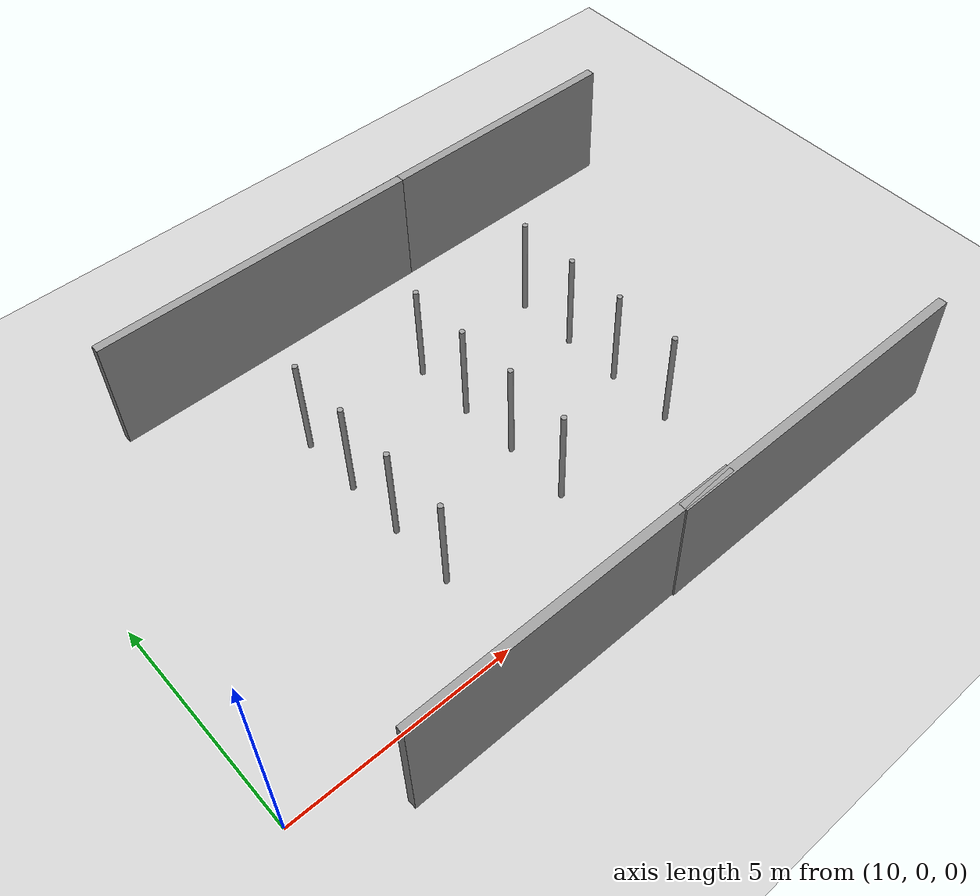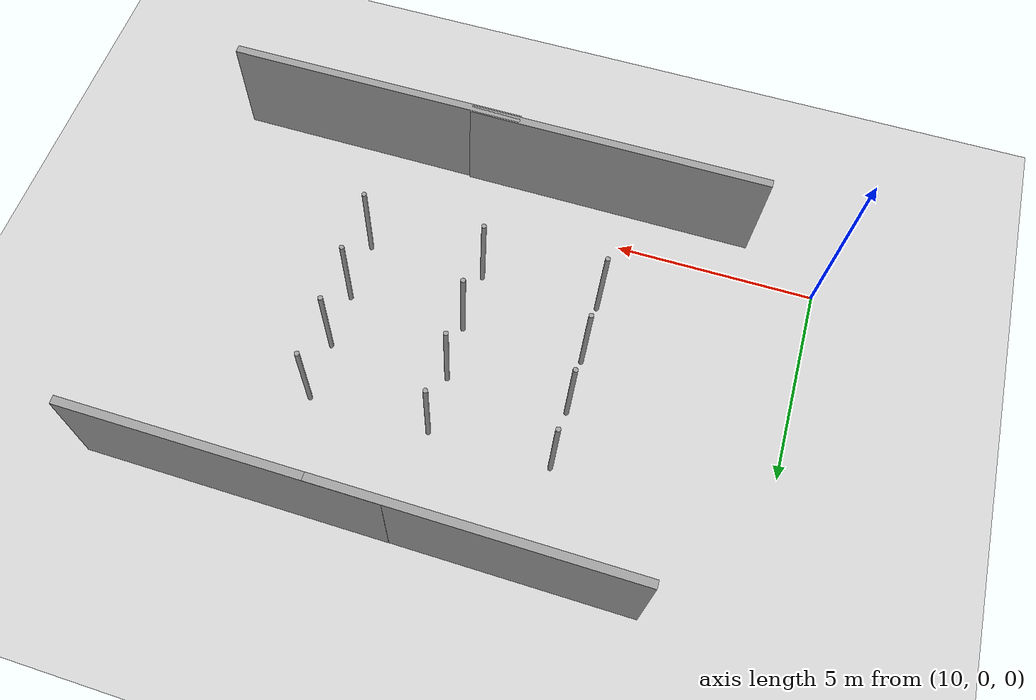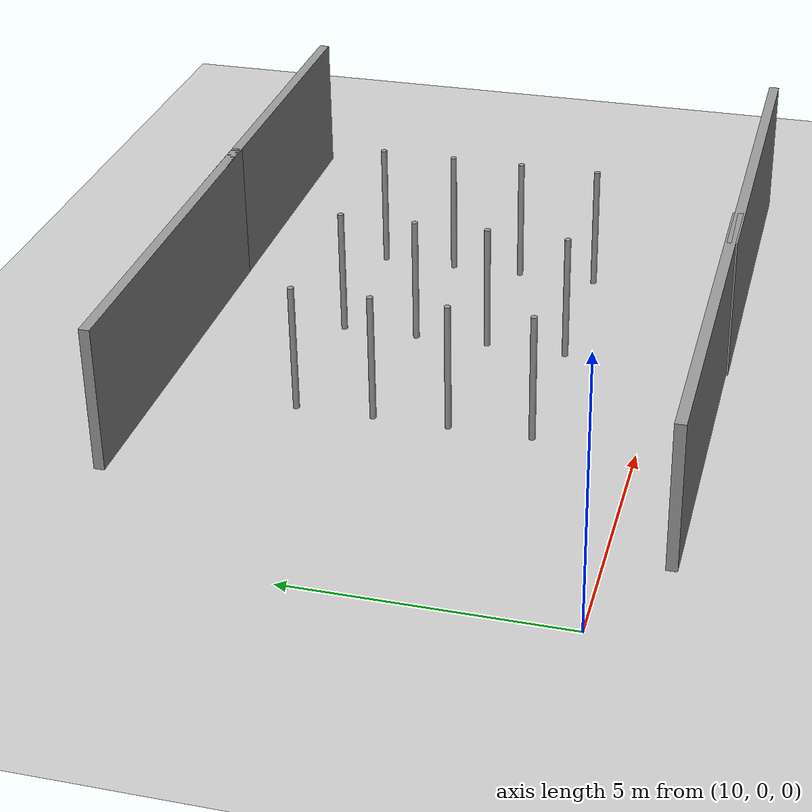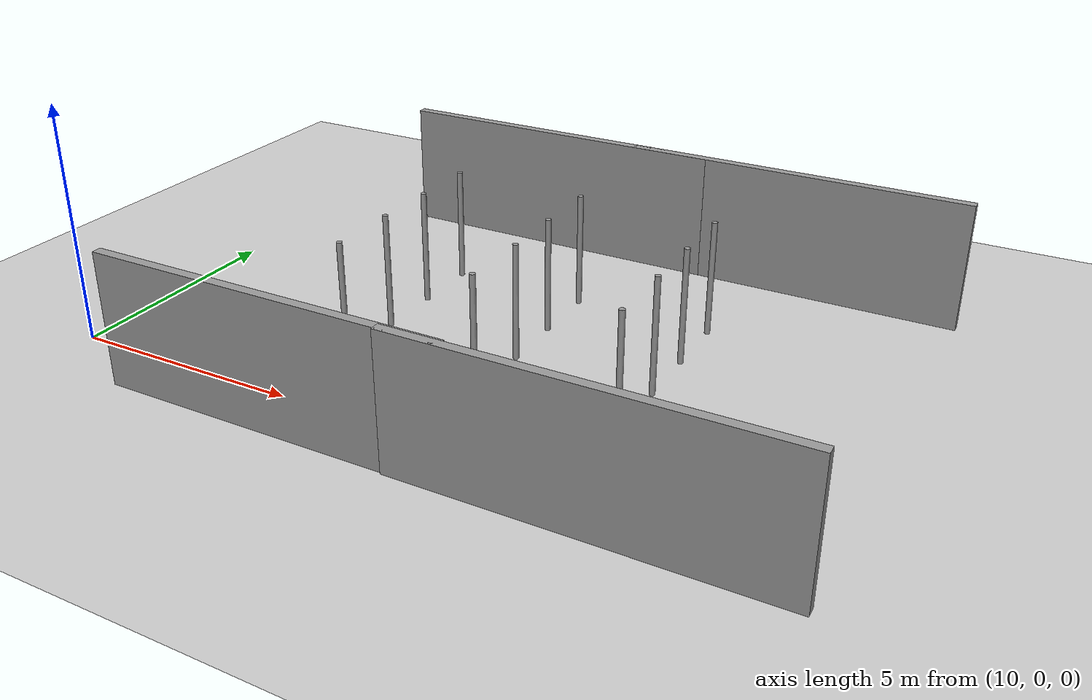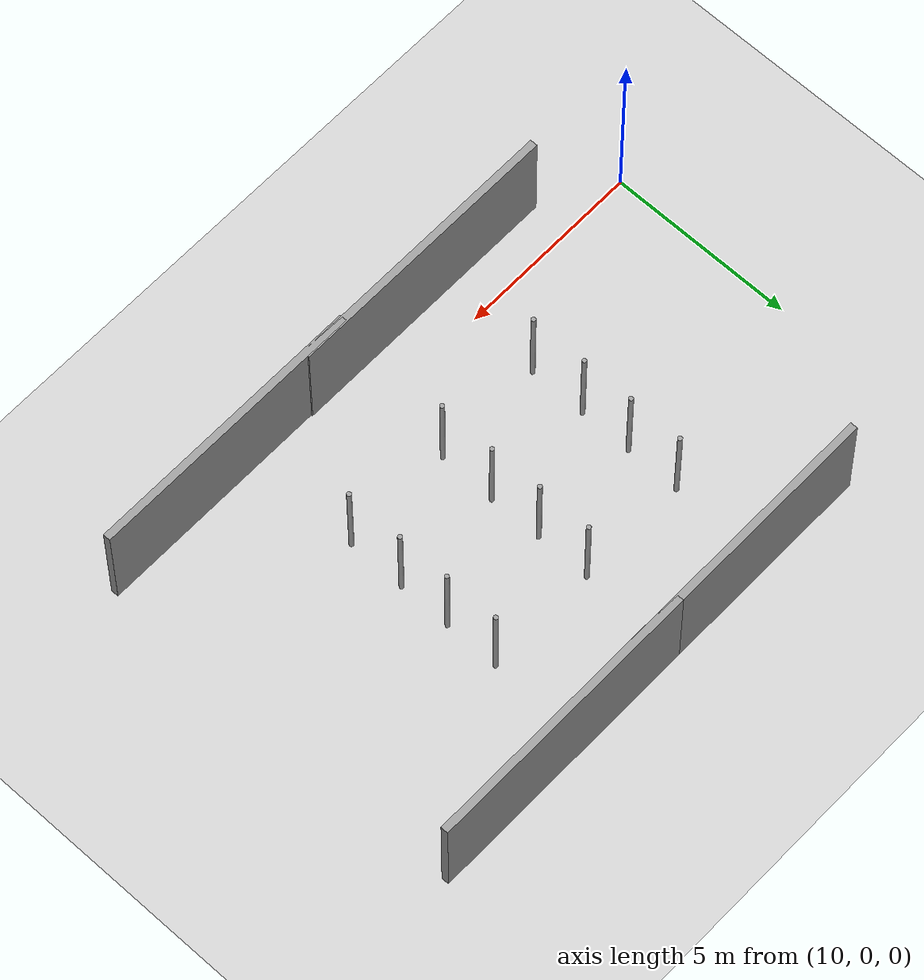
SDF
<sdf version="1.6">
 <world name="default">
  <model name="ground_plane">
   <static>1</static>
   <link name="link">
    <collision name="collision">
     <geometry><plane><normal>0 0 1</normal><size>100 100</size></plane></geometry>
     <surface><friction><ode><mu>100</mu><mu2>50</mu2></ode></friction></surface>
    </collision>
    <visual name="visual">
     <cast_shadows>0</cast_shadows>
     <geometry><plane><normal>0 0 1</normal><size>100 100</size></plane></geometry>
     <material>
      <script><uri>file://media/materials/scripts/gazebo.material</uri><name>Gazebo/Grey</name></script>
     </material>
    </visual>
   </link>
  </model>
  <model name="pole_11">
   <link name="link_0">
    <inertial>
     <mass>0.0364582</mass>
     <inertia>
      <ixx>0.00312124</ixx>
      <ixy>0</ixy>
      <ixz>0</ixz>
      <iyy>0.00312124</iyy>
      <iyz>0</iyz>
      <izz>0.00016615</izz>
     </inertia>
    </inertial>
    <visual name="visual">
     <geometry><cylinder><radius>0.06</radius><length>2.5</length></cylinder></geometry>
     <material>
      <lighting>1</lighting>
      <script><uri>file://media/materials/scripts/gazebo.material</uri><name>Gazebo/Grey</name></script>
      <ambient>0.3 0.3 0.3 1</ambient>
      <diffuse>0.7 0.7 0.7 1</diffuse>
      <specular>0.01 0.01 0.01 1</specular>
      <emissive>0 0 0 1</emissive>
      <shader type="vertex"><normal_map>__default__</normal_map></shader>
     </material>
    </visual>
    <collision name="collision">
     <geometry><cylinder><radius>0.06</radius><length>2.5</length></cylinder></geometry>
     <surface>
      <friction>
       <ode><mu>1</mu><mu2>1</mu2><fdir1>0 0 0</fdir1><slip1>0</slip1><slip2>0</slip2></ode>
       <torsional>
        <coefficient>1</coefficient>
        <patch_radius>0</patch_radius>
        <surface_radius>0</surface_radius>
        <use_patch_radius>1</use_patch_radius>
        <ode><slip>0</slip></ode>
       </torsional>
      </friction>
      <bounce><restitution_coefficient>0</restitution_coefficient><threshold>1e+06</threshold></bounce>
      <contact>
       <collide_without_contact>0</collide_without_contact>
       <collide_without_contact_bitmask>1</collide_without_contact_bitmask>
       <collide_bitmask>1</collide_bitmask>
       <ode>
        <soft_cfm>0</soft_cfm>
        <soft_erp>0.2</soft_erp>
        <kp>1e+13</kp>
        <kd>1</kd>
        <max_vel>0.01</max_vel>
        <min_depth>0</min_depth>
       </ode>
       <bullet>
        <split_impulse>1</split_impulse>
        <split_impulse_penetration_threshold>-0.01</split_impulse_penetration_threshold>
        <soft_cfm>0</soft_cfm>
        <soft_erp>0.2</soft_erp>
        <kp>1e+13</kp>
        <kd>1</kd>
       </bullet>
      </contact>
     </surface>
    </collision>
   </link>
   <static>0</static>
   <pose>15.1066 1.89946 1.24999 0 2e-06 -0.026513</pose>
  </model>
  <model name="pole_12">
   <link name="link_0">
    <inertial>
     <mass>0.0364582</mass>
     <inertia>
      <ixx>0.00312124</ixx>
      <ixy>0</ixy>
      <ixz>0</ixz>
      <iyy>0.00312124</iyy>
      <iyz>0</iyz>
      <izz>0.00016615</izz>
     </inertia>
    </inertial>
    <visual name="visual">
     <geometry><cylinder><radius>0.06</radius><length>2.5</length></cylinder></geometry>
     <material>
      <lighting>1</lighting>
      <script><uri>file://media/materials/scripts/gazebo.material</uri><name>Gazebo/Grey</name></script>
      <ambient>0.3 0.3 0.3 1</ambient>
      <diffuse>0.7 0.7 0.7 1</diffuse>
      <specular>0.01 0.01 0.01 1</specular>
      <emissive>0 0 0 1</emissive>
      <shader type="vertex"><normal_map>__default__</normal_map></shader>
     </material>
    </visual>
    <collision name="collision">
     <geometry><cylinder><radius>0.06</radius><length>2.5</length></cylinder></geometry>
     <surface>
      <friction>
       <ode><mu>1</mu><mu2>1</mu2><fdir1>0 0 0</fdir1><slip1>0</slip1><slip2>0</slip2></ode>
       <torsional>
        <coefficient>1</coefficient>
        <patch_radius>0</patch_radius>
        <surface_radius>0</surface_radius>
        <use_patch_radius>1</use_patch_radius>
        <ode><slip>0</slip></ode>
       </torsional>
      </friction>
      <bounce><restitution_coefficient>0</restitution_coefficient><threshold>1e+06</threshold></bounce>
      <contact>
       <collide_without_contact>0</collide_without_contact>
       <collide_without_contact_bitmask>1</collide_without_contact_bitmask>
       <collide_bitmask>1</collide_bitmask>
       <ode>
        <soft_cfm>0</soft_cfm>
        <soft_erp>0.2</soft_erp>
        <kp>1e+13</kp>
        <kd>1</kd>
        <max_vel>0.01</max_vel>
        <min_depth>0</min_depth>
       </ode>
       <bullet>
        <split_impulse>1</split_impulse>
        <split_impulse_penetration_threshold>-0.01</split_impulse_penetration_threshold>
        <soft_cfm>0</soft_cfm>
        <soft_erp>0.2</soft_erp>
        <kp>1e+13</kp>
        <kd>1</kd>
       </bullet>
      </contact>
     </surface>
    </collision>
   </link>
   <static>0</static>
   <pose>18.1067 1.89942 1.24999 -0 1e-06 -0.029243</pose>
  </model>
  <model name="pole_13">
   <link name="link_0">
    <inertial>
     <mass>0.0364582</mass>
     <inertia>
      <ixx>0.00312124</ixx>
      <ixy>0</ixy>
      <ixz>0</ixz>
      <iyy>0.00312124</iyy>
      <iyz>0</iyz>
      <izz>0.00016615</izz>
     </inertia>
    </inertial>
    <visual name="visual">
     <geometry><cylinder><radius>0.06</radius><length>2.5</length></cylinder></geometry>
     <material>
      <lighting>1</lighting>
      <script><uri>file://media/materials/scripts/gazebo.material</uri><name>Gazebo/Grey</name></script>
      <ambient>0.3 0.3 0.3 1</ambient>
      <diffuse>0.7 0.7 0.7 1</diffuse>
      <specular>0.01 0.01 0.01 1</specular>
      <emissive>0 0 0 1</emissive>
      <shader type="vertex"><normal_map>__default__</normal_map></shader>
     </material>
    </visual>
    <collision name="collision">
     <geometry><cylinder><radius>0.06</radius><length>2.5</length></cylinder></geometry>
     <surface>
      <friction>
       <ode><mu>1</mu><mu2>1</mu2><fdir1>0 0 0</fdir1><slip1>0</slip1><slip2>0</slip2></ode>
       <torsional>
        <coefficient>1</coefficient>
        <patch_radius>0</patch_radius>
        <surface_radius>0</surface_radius>
        <use_patch_radius>1</use_patch_radius>
        <ode><slip>0</slip></ode>
       </torsional>
      </friction>
      <bounce><restitution_coefficient>0</restitution_coefficient><threshold>1e+06</threshold></bounce>
      <contact>
       <collide_without_contact>0</collide_without_contact>
       <collide_without_contact_bitmask>1</collide_without_contact_bitmask>
       <collide_bitmask>1</collide_bitmask>
       <ode>
        <soft_cfm>0</soft_cfm>
        <soft_erp>0.2</soft_erp>
        <kp>1e+13</kp>
        <kd>1</kd>
        <max_vel>0.01</max_vel>
        <min_depth>0</min_depth>
       </ode>
       <bullet>
        <split_impulse>1</split_impulse>
        <split_impulse_penetration_threshold>-0.01</split_impulse_penetration_threshold>
        <soft_cfm>0</soft_cfm>
        <soft_erp>0.2</soft_erp>
        <kp>1e+13</kp>
        <kd>1</kd>
       </bullet>
      </contact>
     </surface>
    </collision>
   </link>
   <static>0</static>
   <pose>21.1067 1.89969 1.25 -1e-06 -0 -0.028999</pose>
  </model>
  <model name="pole_14">
   <link name="link_0">
    <inertial>
     <mass>0.0364582</mass>
     <inertia>
      <ixx>0.00312124</ixx>
      <ixy>0</ixy>
      <ixz>0</ixz>
      <iyy>0.00312124</iyy>
      <iyz>0</iyz>
      <izz>0.00016615</izz>
     </inertia>
    </inertial>
    <visual name="visual">
     <geometry><cylinder><radius>0.06</radius><length>2.5</length></cylinder></geometry>
     <material>
      <lighting>1</lighting>
      <script><uri>file://media/materials/scripts/gazebo.material</uri><name>Gazebo/Grey</name></script>
      <ambient>0.3 0.3 0.3 1</ambient>
      <diffuse>0.7 0.7 0.7 1</diffuse>
      <specular>0.01 0.01 0.01 1</specular>
      <emissive>0 0 0 1</emissive>
      <shader type="vertex"><normal_map>__default__</normal_map></shader>
     </material>
    </visual>
    <collision name="collision">
     <geometry><cylinder><radius>0.06</radius><length>2.5</length></cylinder></geometry>
     <surface>
      <friction>
       <ode><mu>1</mu><mu2>1</mu2><fdir1>0 0 0</fdir1><slip1>0</slip1><slip2>0</slip2></ode>
       <torsional>
        <coefficient>1</coefficient>
        <patch_radius>0</patch_radius>
        <surface_radius>0</surface_radius>
        <use_patch_radius>1</use_patch_radius>
        <ode><slip>0</slip></ode>
       </torsional>
      </friction>
      <bounce><restitution_coefficient>0</restitution_coefficient><threshold>1e+06</threshold></bounce>
      <contact>
       <collide_without_contact>0</collide_without_contact>
       <collide_without_contact_bitmask>1</collide_without_contact_bitmask>
       <collide_bitmask>1</collide_bitmask>
       <ode>
        <soft_cfm>0</soft_cfm>
        <soft_erp>0.2</soft_erp>
        <kp>1e+13</kp>
        <kd>1</kd>
        <max_vel>0.01</max_vel>
        <min_depth>0</min_depth>
       </ode>
       <bullet>
        <split_impulse>1</split_impulse>
        <split_impulse_penetration_threshold>-0.01</split_impulse_penetration_threshold>
        <soft_cfm>0</soft_cfm>
        <soft_erp>0.2</soft_erp>
        <kp>1e+13</kp>
        <kd>1</kd>
       </bullet>
      </contact>
     </surface>
    </collision>
   </link>
   <static>0</static>
   <pose>15.1067 3.44549 1.25 -1e-06 -1e-06 -0.001224</pose>
  </model>
  <model name="pole_15">
   <link name="link_0">
    <inertial>
     <mass>0.0364582</mass>
     <inertia>
      <ixx>0.00312124</ixx>
      <ixy>0</ixy>
      <ixz>0</ixz>
      <iyy>0.00312124</iyy>
      <iyz>0</iyz>
      <izz>0.00016615</izz>
     </inertia>
    </inertial>
    <visual name="visual">
     <geometry><cylinder><radius>0.06</radius><length>2.5</length></cylinder></geometry>
     <material>
      <lighting>1</lighting>
      <script><uri>file://media/materials/scripts/gazebo.material</uri><name>Gazebo/Grey</name></script>
      <ambient>0.3 0.3 0.3 1</ambient>
      <diffuse>0.7 0.7 0.7 1</diffuse>
      <specular>0.01 0.01 0.01 1</specular>
      <emissive>0 0 0 1</emissive>
      <shader type="vertex"><normal_map>__default__</normal_map></shader>
     </material>
    </visual>
    <collision name="collision">
     <geometry><cylinder><radius>0.06</radius><length>2.5</length></cylinder></geometry>
     <surface>
      <friction>
       <ode><mu>1</mu><mu2>1</mu2><fdir1>0 0 0</fdir1><slip1>0</slip1><slip2>0</slip2></ode>
       <torsional>
        <coefficient>1</coefficient>
        <patch_radius>0</patch_radius>
        <surface_radius>0</surface_radius>
        <use_patch_radius>1</use_patch_radius>
        <ode><slip>0</slip></ode>
       </torsional>
      </friction>
      <bounce><restitution_coefficient>0</restitution_coefficient><threshold>1e+06</threshold></bounce>
      <contact>
       <collide_without_contact>0</collide_without_contact>
       <collide_without_contact_bitmask>1</collide_without_contact_bitmask>
       <collide_bitmask>1</collide_bitmask>
       <ode>
        <soft_cfm>0</soft_cfm>
        <soft_erp>0.2</soft_erp>
        <kp>1e+13</kp>
        <kd>1</kd>
        <max_vel>0.01</max_vel>
        <min_depth>0</min_depth>
       </ode>
       <bullet>
        <split_impulse>1</split_impulse>
        <split_impulse_penetration_threshold>-0.01</split_impulse_penetration_threshold>
        <soft_cfm>0</soft_cfm>
        <soft_erp>0.2</soft_erp>
        <kp>1e+13</kp>
        <kd>1</kd>
       </bullet>
      </contact>
     </surface>
    </collision>
   </link>
   <static>0</static>
   <pose>18.1395 3.44558 1.24999 0 1e-06 0.060627</pose>
  </model>
  <model name="pole_16">
   <link name="link_0">
    <inertial>
     <mass>0.0364582</mass>
     <inertia>
      <ixx>0.00312124</ixx>
      <ixy>0</ixy>
      <ixz>0</ixz>
      <iyy>0.00312124</iyy>
      <iyz>0</iyz>
      <izz>0.00016615</izz>
     </inertia>
    </inertial>
    <visual name="visual">
     <geometry><cylinder><radius>0.06</radius><length>2.5</length></cylinder></geometry>
     <material>
      <lighting>1</lighting>
      <script><uri>file://media/materials/scripts/gazebo.material</uri><name>Gazebo/Grey</name></script>
      <ambient>0.3 0.3 0.3 1</ambient>
      <diffuse>0.7 0.7 0.7 1</diffuse>
      <specular>0.01 0.01 0.01 1</specular>
      <emissive>0 0 0 1</emissive>
      <shader type="vertex"><normal_map>__default__</normal_map></shader>
     </material>
    </visual>
    <collision name="collision">
     <geometry><cylinder><radius>0.06</radius><length>2.5</length></cylinder></geometry>
     <surface>
      <friction>
       <ode><mu>1</mu><mu2>1</mu2><fdir1>0 0 0</fdir1><slip1>0</slip1><slip2>0</slip2></ode>
       <torsional>
        <coefficient>1</coefficient>
        <patch_radius>0</patch_radius>
        <surface_radius>0</surface_radius>
        <use_patch_radius>1</use_patch_radius>
        <ode><slip>0</slip></ode>
       </torsional>
      </friction>
      <bounce><restitution_coefficient>0</restitution_coefficient><threshold>1e+06</threshold></bounce>
      <contact>
       <collide_without_contact>0</collide_without_contact>
       <collide_without_contact_bitmask>1</collide_without_contact_bitmask>
       <collide_bitmask>1</collide_bitmask>
       <ode>
        <soft_cfm>0</soft_cfm>
        <soft_erp>0.2</soft_erp>
        <kp>1e+13</kp>
        <kd>1</kd>
        <max_vel>0.01</max_vel>
        <min_depth>0</min_depth>
       </ode>
       <bullet>
        <split_impulse>1</split_impulse>
        <split_impulse_penetration_threshold>-0.01</split_impulse_penetration_threshold>
        <soft_cfm>0</soft_cfm>
        <soft_erp>0.2</soft_erp>
        <kp>1e+13</kp>
        <kd>1</kd>
       </bullet>
      </contact>
     </surface>
    </collision>
   </link>
   <static>0</static>
   <pose>21.1076 3.44557 1.25 -1e-06 -1e-06 0.045844</pose>
  </model>
  <model name="pole_17">
   <link name="link_0">
    <inertial>
     <mass>0.0364582</mass>
     <inertia>
      <ixx>0.00312124</ixx>
      <ixy>0</ixy>
      <ixz>0</ixz>
      <iyy>0.00312124</iyy>
      <iyz>0</iyz>
      <izz>0.00016615</izz>
     </inertia>
    </inertial>
    <visual name="visual">
     <geometry><cylinder><radius>0.06</radius><length>2.5</length></cylinder></geometry>
     <material>
      <lighting>1</lighting>
      <script><uri>file://media/materials/scripts/gazebo.material</uri><name>Gazebo/Grey</name></script>
      <ambient>0.3 0.3 0.3 1</ambient>
      <diffuse>0.7 0.7 0.7 1</diffuse>
      <specular>0.01 0.01 0.01 1</specular>
      <emissive>0 0 0 1</emissive>
      <shader type="vertex"><normal_map>__default__</normal_map></shader>
     </material>
    </visual>
    <collision name="collision">
     <geometry><cylinder><radius>0.06</radius><length>2.5</length></cylinder></geometry>
     <surface>
      <friction>
       <ode><mu>1</mu><mu2>1</mu2><fdir1>0 0 0</fdir1><slip1>0</slip1><slip2>0</slip2></ode>
       <torsional>
        <coefficient>1</coefficient>
        <patch_radius>0</patch_radius>
        <surface_radius>0</surface_radius>
        <use_patch_radius>1</use_patch_radius>
        <ode><slip>0</slip></ode>
       </torsional>
      </friction>
      <bounce><restitution_coefficient>0</restitution_coefficient><threshold>1e+06</threshold></bounce>
      <contact>
       <collide_without_contact>0</collide_without_contact>
       <collide_without_contact_bitmask>1</collide_without_contact_bitmask>
       <collide_bitmask>1</collide_bitmask>
       <ode>
        <soft_cfm>0</soft_cfm>
        <soft_erp>0.2</soft_erp>
        <kp>1e+13</kp>
        <kd>1</kd>
        <max_vel>0.01</max_vel>
        <min_depth>0</min_depth>
       </ode>
       <bullet>
        <split_impulse>1</split_impulse>
        <split_impulse_penetration_threshold>-0.01</split_impulse_penetration_threshold>
        <soft_cfm>0</soft_cfm>
        <soft_erp>0.2</soft_erp>
        <kp>1e+13</kp>
        <kd>1</kd>
       </bullet>
      </contact>
     </surface>
    </collision>
   </link>
   <static>0</static>
   <pose>15.1066 4.85474 1.24999 -1e-06 1e-06 -0.028691</pose>
  </model>
  <model name="pole_18">
   <link name="link_0">
    <inertial>
     <mass>0.0364582</mass>
     <inertia>
      <ixx>0.00312124</ixx>
      <ixy>0</ixy>
      <ixz>0</ixz>
      <iyy>0.00312124</iyy>
      <iyz>0</iyz>
      <izz>0.00016615</izz>
     </inertia>
    </inertial>
    <visual name="visual">
     <geometry><cylinder><radius>0.06</radius><length>2.5</length></cylinder></geometry>
     <material>
      <lighting>1</lighting>
      <script><uri>file://media/materials/scripts/gazebo.material</uri><name>Gazebo/Grey</name></script>
      <ambient>0.3 0.3 0.3 1</ambient>
      <diffuse>0.7 0.7 0.7 1</diffuse>
      <specular>0.01 0.01 0.01 1</specular>
      <emissive>0 0 0 1</emissive>
      <shader type="vertex"><normal_map>__default__</normal_map></shader>
     </material>
    </visual>
    <collision name="collision">
     <geometry><cylinder><radius>0.06</radius><length>2.5</length></cylinder></geometry>
     <surface>
      <friction>
       <ode><mu>1</mu><mu2>1</mu2><fdir1>0 0 0</fdir1><slip1>0</slip1><slip2>0</slip2></ode>
       <torsional>
        <coefficient>1</coefficient>
        <patch_radius>0</patch_radius>
        <surface_radius>0</surface_radius>
        <use_patch_radius>1</use_patch_radius>
        <ode><slip>0</slip></ode>
       </torsional>
      </friction>
      <bounce><restitution_coefficient>0</restitution_coefficient><threshold>1e+06</threshold></bounce>
      <contact>
       <collide_without_contact>0</collide_without_contact>
       <collide_without_contact_bitmask>1</collide_without_contact_bitmask>
       <collide_bitmask>1</collide_bitmask>
       <ode>
        <soft_cfm>0</soft_cfm>
        <soft_erp>0.2</soft_erp>
        <kp>1e+13</kp>
        <kd>1</kd>
        <max_vel>0.01</max_vel>
        <min_depth>0</min_depth>
       </ode>
       <bullet>
        <split_impulse>1</split_impulse>
        <split_impulse_penetration_threshold>-0.01</split_impulse_penetration_threshold>
        <soft_cfm>0</soft_cfm>
        <soft_erp>0.2</soft_erp>
        <kp>1e+13</kp>
        <kd>1</kd>
       </bullet>
      </contact>
     </surface>
    </collision>
   </link>
   <static>0</static>
   <pose>18.1065 4.85469 1.25 -1e-06 -1e-06 -0.02977</pose>
  </model>
  <model name="pole_19">
   <link name="link_0">
    <inertial>
     <mass>0.0364582</mass>
     <inertia>
      <ixx>0.00312124</ixx>
      <ixy>0</ixy>
      <ixz>0</ixz>
      <iyy>0.00312124</iyy>
      <iyz>0</iyz>
      <izz>0.00016615</izz>
     </inertia>
    </inertial>
    <visual name="visual">
     <geometry><cylinder><radius>0.06</radius><length>2.5</length></cylinder></geometry>
     <material>
      <lighting>1</lighting>
      <script><uri>file://media/materials/scripts/gazebo.material</uri><name>Gazebo/Grey</name></script>
      <ambient>0.3 0.3 0.3 1</ambient>
      <diffuse>0.7 0.7 0.7 1</diffuse>
      <specular>0.01 0.01 0.01 1</specular>
      <emissive>0 0 0 1</emissive>
      <shader type="vertex"><normal_map>__default__</normal_map></shader>
     </material>
    </visual>
    <collision name="collision">
     <geometry><cylinder><radius>0.06</radius><length>2.5</length></cylinder></geometry>
     <surface>
      <friction>
       <ode><mu>1</mu><mu2>1</mu2><fdir1>0 0 0</fdir1><slip1>0</slip1><slip2>0</slip2></ode>
       <torsional>
        <coefficient>1</coefficient>
        <patch_radius>0</patch_radius>
        <surface_radius>0</surface_radius>
        <use_patch_radius>1</use_patch_radius>
        <ode><slip>0</slip></ode>
       </torsional>
      </friction>
      <bounce><restitution_coefficient>0</restitution_coefficient><threshold>1e+06</threshold></bounce>
      <contact>
       <collide_without_contact>0</collide_without_contact>
       <collide_without_contact_bitmask>1</collide_without_contact_bitmask>
       <collide_bitmask>1</collide_bitmask>
       <ode>
        <soft_cfm>0</soft_cfm>
        <soft_erp>0.2</soft_erp>
        <kp>1e+13</kp>
        <kd>1</kd>
        <max_vel>0.01</max_vel>
        <min_depth>0</min_depth>
       </ode>
       <bullet>
        <split_impulse>1</split_impulse>
        <split_impulse_penetration_threshold>-0.01</split_impulse_penetration_threshold>
        <soft_cfm>0</soft_cfm>
        <soft_erp>0.2</soft_erp>
        <kp>1e+13</kp>
        <kd>1</kd>
       </bullet>
      </contact>
     </surface>
    </collision>
   </link>
   <static>0</static>
   <pose>21.1067 4.85461 1.25 -1e-06 -1e-06 -0.294868</pose>
  </model>
  <model name="pole_20">
   <link name="link_0">
    <inertial>
     <mass>0.0364582</mass>
     <inertia>
      <ixx>0.00312124</ixx>
      <ixy>0</ixy>
      <ixz>0</ixz>
      <iyy>0.00312124</iyy>
      <iyz>0</iyz>
      <izz>0.00016615</izz>
     </inertia>
    </inertial>
    <visual name="visual">
     <geometry><cylinder><radius>0.06</radius><length>2.5</length></cylinder></geometry>
     <material>
      <lighting>1</lighting>
      <script><uri>file://media/materials/scripts/gazebo.material</uri><name>Gazebo/Grey</name></script>
      <ambient>0.3 0.3 0.3 1</ambient>
      <diffuse>0.7 0.7 0.7 1</diffuse>
      <specular>0.01 0.01 0.01 1</specular>
      <emissive>0 0 0 1</emissive>
      <shader type="vertex"><normal_map>__default__</normal_map></shader>
     </material>
    </visual>
    <collision name="collision">
     <geometry><cylinder><radius>0.06</radius><length>2.5</length></cylinder></geometry>
     <surface>
      <friction>
       <ode><mu>1</mu><mu2>1</mu2><fdir1>0 0 0</fdir1><slip1>0</slip1><slip2>0</slip2></ode>
       <torsional>
        <coefficient>1</coefficient>
        <patch_radius>0</patch_radius>
        <surface_radius>0</surface_radius>
        <use_patch_radius>1</use_patch_radius>
        <ode><slip>0</slip></ode>
       </torsional>
      </friction>
      <bounce><restitution_coefficient>0</restitution_coefficient><threshold>1e+06</threshold></bounce>
      <contact>
       <collide_without_contact>0</collide_without_contact>
       <collide_without_contact_bitmask>1</collide_without_contact_bitmask>
       <collide_bitmask>1</collide_bitmask>
       <ode>
        <soft_cfm>0</soft_cfm>
        <soft_erp>0.2</soft_erp>
        <kp>1e+13</kp>
        <kd>1</kd>
        <max_vel>0.01</max_vel>
        <min_depth>0</min_depth>
       </ode>
       <bullet>
        <split_impulse>1</split_impulse>
        <split_impulse_penetration_threshold>-0.01</split_impulse_penetration_threshold>
        <soft_cfm>0</soft_cfm>
        <soft_erp>0.2</soft_erp>
        <kp>1e+13</kp>
        <kd>1</kd>
       </bullet>
      </contact>
     </surface>
    </collision>
   </link>
   <static>0</static>
   <pose>15.1066 6.3177 1.25 -1e-06 -1e-06 -0.027088</pose>
  </model>
  <model name="pole_21">
   <link name="link_0">
    <inertial>
     <mass>0.0364582</mass>
     <inertia>
      <ixx>0.00312124</ixx>
      <ixy>0</ixy>
      <ixz>0</ixz>
      <iyy>0.00312124</iyy>
      <iyz>0</iyz>
      <izz>0.00016615</izz>
     </inertia>
    </inertial>
    <visual name="visual">
     <geometry><cylinder><radius>0.06</radius><length>2.5</length></cylinder></geometry>
     <material>
      <lighting>1</lighting>
      <script><uri>file://media/materials/scripts/gazebo.material</uri><name>Gazebo/Grey</name></script>
      <ambient>0.3 0.3 0.3 1</ambient>
      <diffuse>0.7 0.7 0.7 1</diffuse>
      <specular>0.01 0.01 0.01 1</specular>
      <emissive>0 0 0 1</emissive>
      <shader type="vertex"><normal_map>__default__</normal_map></shader>
     </material>
    </visual>
    <collision name="collision">
     <geometry><cylinder><radius>0.06</radius><length>2.5</length></cylinder></geometry>
     <surface>
      <friction>
       <ode><mu>1</mu><mu2>1</mu2><fdir1>0 0 0</fdir1><slip1>0</slip1><slip2>0</slip2></ode>
       <torsional>
        <coefficient>1</coefficient>
        <patch_radius>0</patch_radius>
        <surface_radius>0</surface_radius>
        <use_patch_radius>1</use_patch_radius>
        <ode><slip>0</slip></ode>
       </torsional>
      </friction>
      <bounce><restitution_coefficient>0</restitution_coefficient><threshold>1e+06</threshold></bounce>
      <contact>
       <collide_without_contact>0</collide_without_contact>
       <collide_without_contact_bitmask>1</collide_without_contact_bitmask>
       <collide_bitmask>1</collide_bitmask>
       <ode>
        <soft_cfm>0</soft_cfm>
        <soft_erp>0.2</soft_erp>
        <kp>1e+13</kp>
        <kd>1</kd>
        <max_vel>0.01</max_vel>
        <min_depth>0</min_depth>
       </ode>
       <bullet>
        <split_impulse>1</split_impulse>
        <split_impulse_penetration_threshold>-0.01</split_impulse_penetration_threshold>
        <soft_cfm>0</soft_cfm>
        <soft_erp>0.2</soft_erp>
        <kp>1e+13</kp>
        <kd>1</kd>
       </bullet>
      </contact>
     </surface>
    </collision>
   </link>
   <static>0</static>
   <pose>18.1066 6.3174 1.24999 -1e-06 -0 -0.027959</pose>
  </model>
  <model name="pole_22">
   <link name="link_0">
    <inertial>
     <mass>0.0364582</mass>
     <inertia>
      <ixx>0.00312124</ixx>
      <ixy>0</ixy>
      <ixz>0</ixz>
      <iyy>0.00312124</iyy>
      <iyz>0</iyz>
      <izz>0.00016615</izz>
     </inertia>
    </inertial>
    <visual name="visual">
     <geometry><cylinder><radius>0.06</radius><length>2.5</length></cylinder></geometry>
     <material>
      <lighting>1</lighting>
      <script><uri>file://media/materials/scripts/gazebo.material</uri><name>Gazebo/Grey</name></script>
      <ambient>0.3 0.3 0.3 1</ambient>
      <diffuse>0.7 0.7 0.7 1</diffuse>
      <specular>0.01 0.01 0.01 1</specular>
      <emissive>0 0 0 1</emissive>
      <shader type="vertex"><normal_map>__default__</normal_map></shader>
     </material>
    </visual>
    <collision name="collision">
     <geometry><cylinder><radius>0.06</radius><length>2.5</length></cylinder></geometry>
     <surface>
      <friction>
       <ode><mu>1</mu><mu2>1</mu2><fdir1>0 0 0</fdir1><slip1>0</slip1><slip2>0</slip2></ode>
       <torsional>
        <coefficient>1</coefficient>
        <patch_radius>0</patch_radius>
        <surface_radius>0</surface_radius>
        <use_patch_radius>1</use_patch_radius>
        <ode><slip>0</slip></ode>
       </torsional>
      </friction>
      <bounce><restitution_coefficient>0</restitution_coefficient><threshold>1e+06</threshold></bounce>
      <contact>
       <collide_without_contact>0</collide_without_contact>
       <collide_without_contact_bitmask>1</collide_without_contact_bitmask>
       <collide_bitmask>1</collide_bitmask>
       <ode>
        <soft_cfm>0</soft_cfm>
        <soft_erp>0.2</soft_erp>
        <kp>1e+13</kp>
        <kd>1</kd>
        <max_vel>0.01</max_vel>
        <min_depth>0</min_depth>
       </ode>
       <bullet>
        <split_impulse>1</split_impulse>
        <split_impulse_penetration_threshold>-0.01</split_impulse_penetration_threshold>
        <soft_cfm>0</soft_cfm>
        <soft_erp>0.2</soft_erp>
        <kp>1e+13</kp>
        <kd>1</kd>
       </bullet>
      </contact>
     </surface>
    </collision>
   </link>
   <static>0</static>
   <pose>21.1066 6.31755 1.25 -1e-06 -0 -0.03189</pose>
  </model>
  <model name="grey_wall_clone">
   <static>1</static>
   <link name="link">
    <pose>0 0 1.4 0 -0 0</pose>
    <collision name="collision"><geometry><box><size>7.5 0.2 2.8</size></box></geometry></collision>
    <visual name="visual">
     <cast_shadows>0</cast_shadows>
     <geometry><box><size>7.5 0.2 2.8</size></box></geometry>
     <material>
      <script>
       <uri>model://grey_wall/materials/scripts</uri>
       <uri>model://grey_wall/materials/textures</uri>
       <name>vrc/grey_wall</name>
      </script>
     </material>
    </visual>
   </link>
   <pose>16.1172 9.01642 0 0 -0 0</pose>
  </model>
  <model name="grey_wall_clone_clone_clone">
   <static>1</static>
   <link name="link">
    <pose>0 0 1.4 0 -0 0</pose>
    <collision name="collision"><geometry><box><size>7.5 0.2 2.8</size></box></geometry></collision>
    <visual name="visual">
     <cast_shadows>0</cast_shadows>
     <geometry><box><size>7.5 0.2 2.8</size></box></geometry>
     <material>
      <script>
       <uri>model://grey_wall/materials/scripts</uri>
       <uri>model://grey_wall/materials/textures</uri>
       <name>vrc/grey_wall</name>
      </script>
     </material>
    </visual>
   </link>
   <pose>15.5985 -1.09621 0 0 -0 0</pose>
  </model>
  <model name="grey_wall_clone_clone_0">
   <static>1</static>
   <link name="link">
    <pose>0 0 1.4 0 -0 0</pose>
    <collision name="collision"><geometry><box><size>7.5 0.2 2.8</size></box></geometry></collision>
    <visual name="visual">
     <cast_shadows>0</cast_shadows>
     <geometry><box><size>7.5 0.2 2.8</size></box></geometry>
     <material>
      <script>
       <uri>model://grey_wall/materials/scripts</uri>
       <uri>model://grey_wall/materials/textures</uri>
       <name>vrc/grey_wall</name>
      </script>
     </material>
    </visual>
   </link>
   <pose>21.8803 9.01947 0 0 -0 0</pose>
  </model>
  <model name="grey_wall_clone_clone_clone_clone">
   <static>1</static>
   <link name="link">
    <pose>0 0 1.4 0 -0 0</pose>
    <collision name="collision"><geometry><box><size>7.5 0.2 2.8</size></box></geometry></collision>
    <visual name="visual">
     <cast_shadows>0</cast_shadows>
     <geometry><box><size>7.5 0.2 2.8</size></box></geometry>
     <material>
      <script>
       <uri>model://grey_wall/materials/scripts</uri>
       <uri>model://grey_wall/materials/textures</uri>
       <name>vrc/grey_wall</name>
      </script>
     </material>
    </visual>
   </link>
   <pose>21.8482 -1.13225 0 0 -0 0</pose>
  </model>
 </world>
</sdf>
